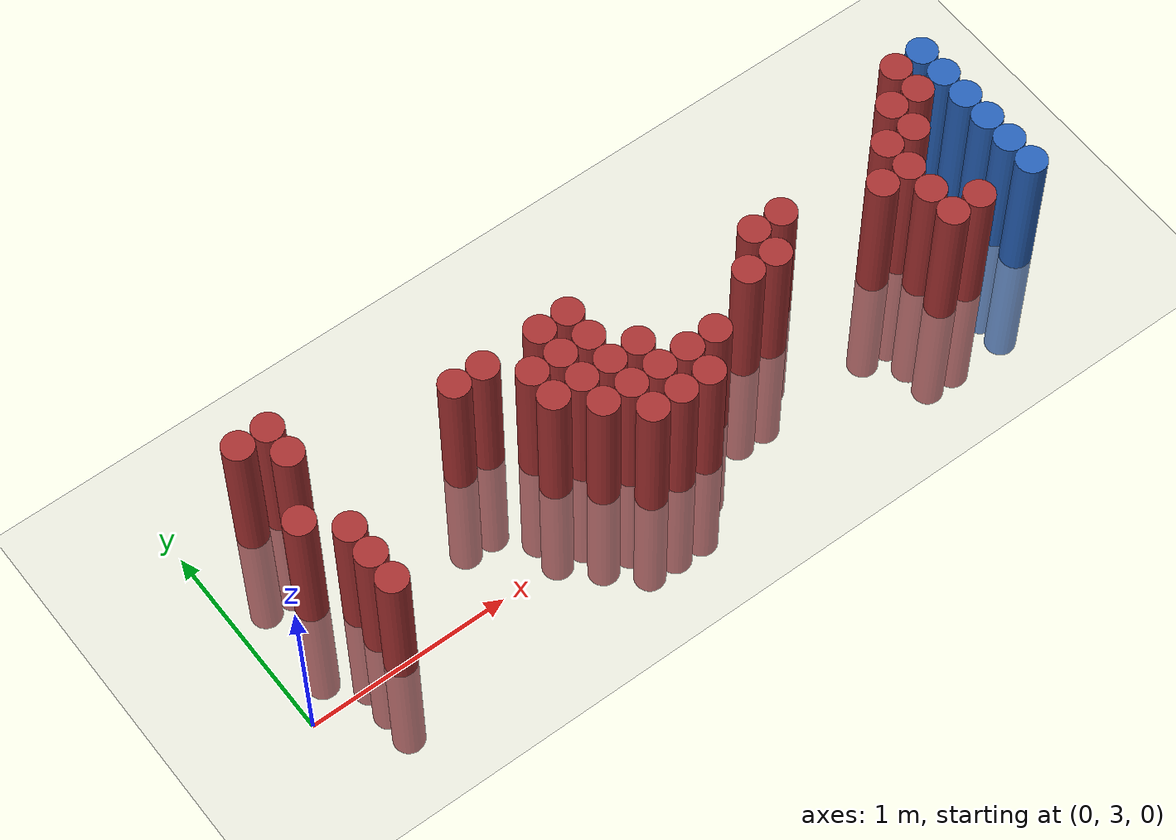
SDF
<sdf version="1.6">
 <world name="default">
  <model name="ground_plane">
   <static>1</static>
   <link name="link">
    <collision name="collision">
     <geometry><plane><normal>0 0 1</normal><size>100 100</size></plane></geometry>
     <surface><friction><ode><mu>100</mu><mu2>50</mu2></ode></friction></surface>
    </collision>
    <visual name="visual">
     <cast_shadows>0</cast_shadows>
     <geometry><plane><normal>0 0 1</normal><size>100 100</size></plane></geometry>
     <material>
      <script><uri>file://media/materials/scripts/gazebo.material</uri><name>Gazebo/Grey</name></script>
     </material>
    </visual>
   </link>
  </model>
  <model name="unit_cylinder_154">
   <static>1</static>
   <pose>3.925000 3.025000 0.000000 0.000000 0.000000 0.000000</pose>
   <link name="link">
    <inertial>
     <mass>1</mass>
     <inertia><ixx>0.145833</ixx><ixy>0</ixy><ixz>0</ixz><iyy>0.145833</iyy><iyz>0</iyz><izz>0.125</izz></inertia>
    </inertial>
    <collision name="collision">
     <geometry><cylinder><radius>0.075000</radius><length>1.5</length></cylinder></geometry>
    </collision>
    <visual name="visual">
     <geometry><cylinder><radius>0.075000</radius><length>1.5</length></cylinder></geometry>
     <material>
      <ambient>0.152000 0.379000 0.720000 1</ambient>
      <diffuse>0.152000 0.379000 0.720000 1</diffuse>
     </material>
     <material>
      <script><name>Gazebo/Grey</name><uri>file://media/materials/scripts/gazebo.material</uri></script>
     </material>
    </visual>
   </link>
  </model>
  <model name="unit_cylinder_156">
   <static>1</static>
   <pose>3.925000 3.175000 0.000000 0.000000 0.000000 0.000000</pose>
   <link name="link">
    <inertial>
     <mass>1</mass>
     <inertia><ixx>0.145833</ixx><ixy>0</ixy><ixz>0</ixz><iyy>0.145833</iyy><iyz>0</iyz><izz>0.125</izz></inertia>
    </inertial>
    <collision name="collision">
     <geometry><cylinder><radius>0.075000</radius><length>1.5</length></cylinder></geometry>
    </collision>
    <visual name="visual">
     <geometry><cylinder><radius>0.075000</radius><length>1.5</length></cylinder></geometry>
     <material>
      <ambient>0.152000 0.379000 0.720000 1</ambient>
      <diffuse>0.152000 0.379000 0.720000 1</diffuse>
     </material>
     <material>
      <script><name>Gazebo/Grey</name><uri>file://media/materials/scripts/gazebo.material</uri></script>
     </material>
    </visual>
   </link>
  </model>
  <model name="unit_cylinder_158">
   <static>1</static>
   <pose>3.925000 3.325000 0.000000 0.000000 0.000000 0.000000</pose>
   <link name="link">
    <inertial>
     <mass>1</mass>
     <inertia><ixx>0.145833</ixx><ixy>0</ixy><ixz>0</ixz><iyy>0.145833</iyy><iyz>0</iyz><izz>0.125</izz></inertia>
    </inertial>
    <collision name="collision">
     <geometry><cylinder><radius>0.075000</radius><length>1.5</length></cylinder></geometry>
    </collision>
    <visual name="visual">
     <geometry><cylinder><radius>0.075000</radius><length>1.5</length></cylinder></geometry>
     <material>
      <ambient>0.152000 0.379000 0.720000 1</ambient>
      <diffuse>0.152000 0.379000 0.720000 1</diffuse>
     </material>
     <material>
      <script><name>Gazebo/Grey</name><uri>file://media/materials/scripts/gazebo.material</uri></script>
     </material>
    </visual>
   </link>
  </model>
  <model name="unit_cylinder_160">
   <static>1</static>
   <pose>3.925000 3.475000 0.000000 0.000000 0.000000 0.000000</pose>
   <link name="link">
    <inertial>
     <mass>1</mass>
     <inertia><ixx>0.145833</ixx><ixy>0</ixy><ixz>0</ixz><iyy>0.145833</iyy><iyz>0</iyz><izz>0.125</izz></inertia>
    </inertial>
    <collision name="collision">
     <geometry><cylinder><radius>0.075000</radius><length>1.5</length></cylinder></geometry>
    </collision>
    <visual name="visual">
     <geometry><cylinder><radius>0.075000</radius><length>1.5</length></cylinder></geometry>
     <material>
      <ambient>0.152000 0.379000 0.720000 1</ambient>
      <diffuse>0.152000 0.379000 0.720000 1</diffuse>
     </material>
     <material>
      <script><name>Gazebo/Grey</name><uri>file://media/materials/scripts/gazebo.material</uri></script>
     </material>
    </visual>
   </link>
  </model>
  <model name="unit_cylinder_162">
   <static>1</static>
   <pose>3.925000 3.625000 0.000000 0.000000 0.000000 0.000000</pose>
   <link name="link">
    <inertial>
     <mass>1</mass>
     <inertia><ixx>0.145833</ixx><ixy>0</ixy><ixz>0</ixz><iyy>0.145833</iyy><iyz>0</iyz><izz>0.125</izz></inertia>
    </inertial>
    <collision name="collision">
     <geometry><cylinder><radius>0.075000</radius><length>1.5</length></cylinder></geometry>
    </collision>
    <visual name="visual">
     <geometry><cylinder><radius>0.075000</radius><length>1.5</length></cylinder></geometry>
     <material>
      <ambient>0.152000 0.379000 0.720000 1</ambient>
      <diffuse>0.152000 0.379000 0.720000 1</diffuse>
     </material>
     <material>
      <script><name>Gazebo/Grey</name><uri>file://media/materials/scripts/gazebo.material</uri></script>
     </material>
    </visual>
   </link>
  </model>
  <model name="unit_cylinder_164">
   <static>1</static>
   <pose>3.925000 3.775000 0.000000 0.000000 0.000000 0.000000</pose>
   <link name="link">
    <inertial>
     <mass>1</mass>
     <inertia><ixx>0.145833</ixx><ixy>0</ixy><ixz>0</ixz><iyy>0.145833</iyy><iyz>0</iyz><izz>0.125</izz></inertia>
    </inertial>
    <collision name="collision">
     <geometry><cylinder><radius>0.075000</radius><length>1.5</length></cylinder></geometry>
    </collision>
    <visual name="visual">
     <geometry><cylinder><radius>0.075000</radius><length>1.5</length></cylinder></geometry>
     <material>
      <ambient>0.152000 0.379000 0.720000 1</ambient>
      <diffuse>0.152000 0.379000 0.720000 1</diffuse>
     </material>
     <material>
      <script><name>Gazebo/Grey</name><uri>file://media/materials/scripts/gazebo.material</uri></script>
     </material>
    </visual>
   </link>
  </model>
  <model name="unit_cylinder_344">
   <static>1</static>
   <pose>0.325000 3.475000 0.000000 0.000000 0.000000 0.000000</pose>
   <link name="link">
    <inertial>
     <mass>1</mass>
     <inertia><ixx>0.145833</ixx><ixy>0</ixy><ixz>0</ixz><iyy>0.145833</iyy><iyz>0</iyz><izz>0.125</izz></inertia>
    </inertial>
    <collision name="collision">
     <geometry><cylinder><radius>0.075000</radius><length>1.5</length></cylinder></geometry>
    </collision>
    <visual name="visual">
     <geometry><cylinder><radius>0.075000</radius><length>1.5</length></cylinder></geometry>
     <material>
      <ambient>0.648000 0.192000 0.192000 1</ambient>
      <diffuse>0.648000 0.192000 0.192000 1</diffuse>
     </material>
     <material>
      <script><name>Gazebo/Grey</name><uri>file://media/materials/scripts/gazebo.material</uri></script>
     </material>
    </visual>
   </link>
  </model>
  <model name="unit_cylinder_345">
   <static>1</static>
   <pose>0.325000 3.925000 0.000000 0.000000 0.000000 0.000000</pose>
   <link name="link">
    <inertial>
     <mass>1</mass>
     <inertia><ixx>0.145833</ixx><ixy>0</ixy><ixz>0</ixz><iyy>0.145833</iyy><iyz>0</iyz><izz>0.125</izz></inertia>
    </inertial>
    <collision name="collision">
     <geometry><cylinder><radius>0.075000</radius><length>1.5</length></cylinder></geometry>
    </collision>
    <visual name="visual">
     <geometry><cylinder><radius>0.075000</radius><length>1.5</length></cylinder></geometry>
     <material>
      <ambient>0.648000 0.192000 0.192000 1</ambient>
      <diffuse>0.648000 0.192000 0.192000 1</diffuse>
     </material>
     <material>
      <script><name>Gazebo/Grey</name><uri>file://media/materials/scripts/gazebo.material</uri></script>
     </material>
    </visual>
   </link>
  </model>
  <model name="unit_cylinder_346">
   <static>1</static>
   <pose>0.475000 3.025000 0.000000 0.000000 0.000000 0.000000</pose>
   <link name="link">
    <inertial>
     <mass>1</mass>
     <inertia><ixx>0.145833</ixx><ixy>0</ixy><ixz>0</ixz><iyy>0.145833</iyy><iyz>0</iyz><izz>0.125</izz></inertia>
    </inertial>
    <collision name="collision">
     <geometry><cylinder><radius>0.075000</radius><length>1.5</length></cylinder></geometry>
    </collision>
    <visual name="visual">
     <geometry><cylinder><radius>0.075000</radius><length>1.5</length></cylinder></geometry>
     <material>
      <ambient>0.648000 0.192000 0.192000 1</ambient>
      <diffuse>0.648000 0.192000 0.192000 1</diffuse>
     </material>
     <material>
      <script><name>Gazebo/Grey</name><uri>file://media/materials/scripts/gazebo.material</uri></script>
     </material>
    </visual>
   </link>
  </model>
  <model name="unit_cylinder_347">
   <static>1</static>
   <pose>0.475000 3.175000 0.000000 0.000000 0.000000 0.000000</pose>
   <link name="link">
    <inertial>
     <mass>1</mass>
     <inertia><ixx>0.145833</ixx><ixy>0</ixy><ixz>0</ixz><iyy>0.145833</iyy><iyz>0</iyz><izz>0.125</izz></inertia>
    </inertial>
    <collision name="collision">
     <geometry><cylinder><radius>0.075000</radius><length>1.5</length></cylinder></geometry>
    </collision>
    <visual name="visual">
     <geometry><cylinder><radius>0.075000</radius><length>1.5</length></cylinder></geometry>
     <material>
      <ambient>0.648000 0.192000 0.192000 1</ambient>
      <diffuse>0.648000 0.192000 0.192000 1</diffuse>
     </material>
     <material>
      <script><name>Gazebo/Grey</name><uri>file://media/materials/scripts/gazebo.material</uri></script>
     </material>
    </visual>
   </link>
  </model>
  <model name="unit_cylinder_348">
   <static>1</static>
   <pose>0.475000 3.325000 0.000000 0.000000 0.000000 0.000000</pose>
   <link name="link">
    <inertial>
     <mass>1</mass>
     <inertia><ixx>0.145833</ixx><ixy>0</ixy><ixz>0</ixz><iyy>0.145833</iyy><iyz>0</iyz><izz>0.125</izz></inertia>
    </inertial>
    <collision name="collision">
     <geometry><cylinder><radius>0.075000</radius><length>1.5</length></cylinder></geometry>
    </collision>
    <visual name="visual">
     <geometry><cylinder><radius>0.075000</radius><length>1.5</length></cylinder></geometry>
     <material>
      <ambient>0.648000 0.192000 0.192000 1</ambient>
      <diffuse>0.648000 0.192000 0.192000 1</diffuse>
     </material>
     <material>
      <script><name>Gazebo/Grey</name><uri>file://media/materials/scripts/gazebo.material</uri></script>
     </material>
    </visual>
   </link>
  </model>
  <model name="unit_cylinder_349">
   <static>1</static>
   <pose>0.475000 3.775000 0.000000 0.000000 0.000000 0.000000</pose>
   <link name="link">
    <inertial>
     <mass>1</mass>
     <inertia><ixx>0.145833</ixx><ixy>0</ixy><ixz>0</ixz><iyy>0.145833</iyy><iyz>0</iyz><izz>0.125</izz></inertia>
    </inertial>
    <collision name="collision">
     <geometry><cylinder><radius>0.075000</radius><length>1.5</length></cylinder></geometry>
    </collision>
    <visual name="visual">
     <geometry><cylinder><radius>0.075000</radius><length>1.5</length></cylinder></geometry>
     <material>
      <ambient>0.648000 0.192000 0.192000 1</ambient>
      <diffuse>0.648000 0.192000 0.192000 1</diffuse>
     </material>
     <material>
      <script><name>Gazebo/Grey</name><uri>file://media/materials/scripts/gazebo.material</uri></script>
     </material>
    </visual>
   </link>
  </model>
  <model name="unit_cylinder_350">
   <static>1</static>
   <pose>0.475000 3.925000 0.000000 0.000000 0.000000 0.000000</pose>
   <link name="link">
    <inertial>
     <mass>1</mass>
     <inertia><ixx>0.145833</ixx><ixy>0</ixy><ixz>0</ixz><iyy>0.145833</iyy><iyz>0</iyz><izz>0.125</izz></inertia>
    </inertial>
    <collision name="collision">
     <geometry><cylinder><radius>0.075000</radius><length>1.5</length></cylinder></geometry>
    </collision>
    <visual name="visual">
     <geometry><cylinder><radius>0.075000</radius><length>1.5</length></cylinder></geometry>
     <material>
      <ambient>0.648000 0.192000 0.192000 1</ambient>
      <diffuse>0.648000 0.192000 0.192000 1</diffuse>
     </material>
     <material>
      <script><name>Gazebo/Grey</name><uri>file://media/materials/scripts/gazebo.material</uri></script>
     </material>
    </visual>
   </link>
  </model>
  <model name="unit_cylinder_359">
   <static>1</static>
   <pose>1.225000 3.625000 0.000000 0.000000 0.000000 0.000000</pose>
   <link name="link">
    <inertial>
     <mass>1</mass>
     <inertia><ixx>0.145833</ixx><ixy>0</ixy><ixz>0</ixz><iyy>0.145833</iyy><iyz>0</iyz><izz>0.125</izz></inertia>
    </inertial>
    <collision name="collision">
     <geometry><cylinder><radius>0.075000</radius><length>1.5</length></cylinder></geometry>
    </collision>
    <visual name="visual">
     <geometry><cylinder><radius>0.075000</radius><length>1.5</length></cylinder></geometry>
     <material>
      <ambient>0.648000 0.192000 0.192000 1</ambient>
      <diffuse>0.648000 0.192000 0.192000 1</diffuse>
     </material>
     <material>
      <script><name>Gazebo/Grey</name><uri>file://media/materials/scripts/gazebo.material</uri></script>
     </material>
    </visual>
   </link>
  </model>
  <model name="unit_cylinder_364">
   <static>1</static>
   <pose>1.375000 3.625000 0.000000 0.000000 0.000000 0.000000</pose>
   <link name="link">
    <inertial>
     <mass>1</mass>
     <inertia><ixx>0.145833</ixx><ixy>0</ixy><ixz>0</ixz><iyy>0.145833</iyy><iyz>0</iyz><izz>0.125</izz></inertia>
    </inertial>
    <collision name="collision">
     <geometry><cylinder><radius>0.075000</radius><length>1.5</length></cylinder></geometry>
    </collision>
    <visual name="visual">
     <geometry><cylinder><radius>0.075000</radius><length>1.5</length></cylinder></geometry>
     <material>
      <ambient>0.648000 0.192000 0.192000 1</ambient>
      <diffuse>0.648000 0.192000 0.192000 1</diffuse>
     </material>
     <material>
      <script><name>Gazebo/Grey</name><uri>file://media/materials/scripts/gazebo.material</uri></script>
     </material>
    </visual>
   </link>
  </model>
  <model name="unit_cylinder_368">
   <static>1</static>
   <pose>1.525000 3.325000 0.000000 0.000000 0.000000 0.000000</pose>
   <link name="link">
    <inertial>
     <mass>1</mass>
     <inertia><ixx>0.145833</ixx><ixy>0</ixy><ixz>0</ixz><iyy>0.145833</iyy><iyz>0</iyz><izz>0.125</izz></inertia>
    </inertial>
    <collision name="collision">
     <geometry><cylinder><radius>0.075000</radius><length>1.5</length></cylinder></geometry>
    </collision>
    <visual name="visual">
     <geometry><cylinder><radius>0.075000</radius><length>1.5</length></cylinder></geometry>
     <material>
      <ambient>0.648000 0.192000 0.192000 1</ambient>
      <diffuse>0.648000 0.192000 0.192000 1</diffuse>
     </material>
     <material>
      <script><name>Gazebo/Grey</name><uri>file://media/materials/scripts/gazebo.material</uri></script>
     </material>
    </visual>
   </link>
  </model>
  <model name="unit_cylinder_369">
   <static>1</static>
   <pose>1.525000 3.475000 0.000000 0.000000 0.000000 0.000000</pose>
   <link name="link">
    <inertial>
     <mass>1</mass>
     <inertia><ixx>0.145833</ixx><ixy>0</ixy><ixz>0</ixz><iyy>0.145833</iyy><iyz>0</iyz><izz>0.125</izz></inertia>
    </inertial>
    <collision name="collision">
     <geometry><cylinder><radius>0.075000</radius><length>1.5</length></cylinder></geometry>
    </collision>
    <visual name="visual">
     <geometry><cylinder><radius>0.075000</radius><length>1.5</length></cylinder></geometry>
     <material>
      <ambient>0.648000 0.192000 0.192000 1</ambient>
      <diffuse>0.648000 0.192000 0.192000 1</diffuse>
     </material>
     <material>
      <script><name>Gazebo/Grey</name><uri>file://media/materials/scripts/gazebo.material</uri></script>
     </material>
    </visual>
   </link>
  </model>
  <model name="unit_cylinder_377">
   <static>1</static>
   <pose>1.675000 3.175000 0.000000 0.000000 0.000000 0.000000</pose>
   <link name="link">
    <inertial>
     <mass>1</mass>
     <inertia><ixx>0.145833</ixx><ixy>0</ixy><ixz>0</ixz><iyy>0.145833</iyy><iyz>0</iyz><izz>0.125</izz></inertia>
    </inertial>
    <collision name="collision">
     <geometry><cylinder><radius>0.075000</radius><length>1.5</length></cylinder></geometry>
    </collision>
    <visual name="visual">
     <geometry><cylinder><radius>0.075000</radius><length>1.5</length></cylinder></geometry>
     <material>
      <ambient>0.648000 0.192000 0.192000 1</ambient>
      <diffuse>0.648000 0.192000 0.192000 1</diffuse>
     </material>
     <material>
      <script><name>Gazebo/Grey</name><uri>file://media/materials/scripts/gazebo.material</uri></script>
     </material>
    </visual>
   </link>
  </model>
  <model name="unit_cylinder_378">
   <static>1</static>
   <pose>1.675000 3.325000 0.000000 0.000000 0.000000 0.000000</pose>
   <link name="link">
    <inertial>
     <mass>1</mass>
     <inertia><ixx>0.145833</ixx><ixy>0</ixy><ixz>0</ixz><iyy>0.145833</iyy><iyz>0</iyz><izz>0.125</izz></inertia>
    </inertial>
    <collision name="collision">
     <geometry><cylinder><radius>0.075000</radius><length>1.5</length></cylinder></geometry>
    </collision>
    <visual name="visual">
     <geometry><cylinder><radius>0.075000</radius><length>1.5</length></cylinder></geometry>
     <material>
      <ambient>0.648000 0.192000 0.192000 1</ambient>
      <diffuse>0.648000 0.192000 0.192000 1</diffuse>
     </material>
     <material>
      <script><name>Gazebo/Grey</name><uri>file://media/materials/scripts/gazebo.material</uri></script>
     </material>
    </visual>
   </link>
  </model>
  <model name="unit_cylinder_379">
   <static>1</static>
   <pose>1.675000 3.475000 0.000000 0.000000 0.000000 0.000000</pose>
   <link name="link">
    <inertial>
     <mass>1</mass>
     <inertia><ixx>0.145833</ixx><ixy>0</ixy><ixz>0</ixz><iyy>0.145833</iyy><iyz>0</iyz><izz>0.125</izz></inertia>
    </inertial>
    <collision name="collision">
     <geometry><cylinder><radius>0.075000</radius><length>1.5</length></cylinder></geometry>
    </collision>
    <visual name="visual">
     <geometry><cylinder><radius>0.075000</radius><length>1.5</length></cylinder></geometry>
     <material>
      <ambient>0.648000 0.192000 0.192000 1</ambient>
      <diffuse>0.648000 0.192000 0.192000 1</diffuse>
     </material>
     <material>
      <script><name>Gazebo/Grey</name><uri>file://media/materials/scripts/gazebo.material</uri></script>
     </material>
    </visual>
   </link>
  </model>
  <model name="unit_cylinder_380">
   <static>1</static>
   <pose>1.675000 3.625000 0.000000 0.000000 0.000000 0.000000</pose>
   <link name="link">
    <inertial>
     <mass>1</mass>
     <inertia><ixx>0.145833</ixx><ixy>0</ixy><ixz>0</ixz><iyy>0.145833</iyy><iyz>0</iyz><izz>0.125</izz></inertia>
    </inertial>
    <collision name="collision">
     <geometry><cylinder><radius>0.075000</radius><length>1.5</length></cylinder></geometry>
    </collision>
    <visual name="visual">
     <geometry><cylinder><radius>0.075000</radius><length>1.5</length></cylinder></geometry>
     <material>
      <ambient>0.648000 0.192000 0.192000 1</ambient>
      <diffuse>0.648000 0.192000 0.192000 1</diffuse>
     </material>
     <material>
      <script><name>Gazebo/Grey</name><uri>file://media/materials/scripts/gazebo.material</uri></script>
     </material>
    </visual>
   </link>
  </model>
  <model name="unit_cylinder_386">
   <static>1</static>
   <pose>1.825000 3.025000 0.000000 0.000000 0.000000 0.000000</pose>
   <link name="link">
    <inertial>
     <mass>1</mass>
     <inertia><ixx>0.145833</ixx><ixy>0</ixy><ixz>0</ixz><iyy>0.145833</iyy><iyz>0</iyz><izz>0.125</izz></inertia>
    </inertial>
    <collision name="collision">
     <geometry><cylinder><radius>0.075000</radius><length>1.5</length></cylinder></geometry>
    </collision>
    <visual name="visual">
     <geometry><cylinder><radius>0.075000</radius><length>1.5</length></cylinder></geometry>
     <material>
      <ambient>0.648000 0.192000 0.192000 1</ambient>
      <diffuse>0.648000 0.192000 0.192000 1</diffuse>
     </material>
     <material>
      <script><name>Gazebo/Grey</name><uri>file://media/materials/scripts/gazebo.material</uri></script>
     </material>
    </visual>
   </link>
  </model>
  <model name="unit_cylinder_387">
   <static>1</static>
   <pose>1.825000 3.175000 0.000000 0.000000 0.000000 0.000000</pose>
   <link name="link">
    <inertial>
     <mass>1</mass>
     <inertia><ixx>0.145833</ixx><ixy>0</ixy><ixz>0</ixz><iyy>0.145833</iyy><iyz>0</iyz><izz>0.125</izz></inertia>
    </inertial>
    <collision name="collision">
     <geometry><cylinder><radius>0.075000</radius><length>1.5</length></cylinder></geometry>
    </collision>
    <visual name="visual">
     <geometry><cylinder><radius>0.075000</radius><length>1.5</length></cylinder></geometry>
     <material>
      <ambient>0.648000 0.192000 0.192000 1</ambient>
      <diffuse>0.648000 0.192000 0.192000 1</diffuse>
     </material>
     <material>
      <script><name>Gazebo/Grey</name><uri>file://media/materials/scripts/gazebo.material</uri></script>
     </material>
    </visual>
   </link>
  </model>
  <model name="unit_cylinder_388">
   <static>1</static>
   <pose>1.825000 3.325000 0.000000 0.000000 0.000000 0.000000</pose>
   <link name="link">
    <inertial>
     <mass>1</mass>
     <inertia><ixx>0.145833</ixx><ixy>0</ixy><ixz>0</ixz><iyy>0.145833</iyy><iyz>0</iyz><izz>0.125</izz></inertia>
    </inertial>
    <collision name="collision">
     <geometry><cylinder><radius>0.075000</radius><length>1.5</length></cylinder></geometry>
    </collision>
    <visual name="visual">
     <geometry><cylinder><radius>0.075000</radius><length>1.5</length></cylinder></geometry>
     <material>
      <ambient>0.648000 0.192000 0.192000 1</ambient>
      <diffuse>0.648000 0.192000 0.192000 1</diffuse>
     </material>
     <material>
      <script><name>Gazebo/Grey</name><uri>file://media/materials/scripts/gazebo.material</uri></script>
     </material>
    </visual>
   </link>
  </model>
  <model name="unit_cylinder_389">
   <static>1</static>
   <pose>1.825000 3.475000 0.000000 0.000000 0.000000 0.000000</pose>
   <link name="link">
    <inertial>
     <mass>1</mass>
     <inertia><ixx>0.145833</ixx><ixy>0</ixy><ixz>0</ixz><iyy>0.145833</iyy><iyz>0</iyz><izz>0.125</izz></inertia>
    </inertial>
    <collision name="collision">
     <geometry><cylinder><radius>0.075000</radius><length>1.5</length></cylinder></geometry>
    </collision>
    <visual name="visual">
     <geometry><cylinder><radius>0.075000</radius><length>1.5</length></cylinder></geometry>
     <material>
      <ambient>0.648000 0.192000 0.192000 1</ambient>
      <diffuse>0.648000 0.192000 0.192000 1</diffuse>
     </material>
     <material>
      <script><name>Gazebo/Grey</name><uri>file://media/materials/scripts/gazebo.material</uri></script>
     </material>
    </visual>
   </link>
  </model>
  <model name="unit_cylinder_390">
   <static>1</static>
   <pose>1.825000 3.625000 0.000000 0.000000 0.000000 0.000000</pose>
   <link name="link">
    <inertial>
     <mass>1</mass>
     <inertia><ixx>0.145833</ixx><ixy>0</ixy><ixz>0</ixz><iyy>0.145833</iyy><iyz>0</iyz><izz>0.125</izz></inertia>
    </inertial>
    <collision name="collision">
     <geometry><cylinder><radius>0.075000</radius><length>1.5</length></cylinder></geometry>
    </collision>
    <visual name="visual">
     <geometry><cylinder><radius>0.075000</radius><length>1.5</length></cylinder></geometry>
     <material>
      <ambient>0.648000 0.192000 0.192000 1</ambient>
      <diffuse>0.648000 0.192000 0.192000 1</diffuse>
     </material>
     <material>
      <script><name>Gazebo/Grey</name><uri>file://media/materials/scripts/gazebo.material</uri></script>
     </material>
    </visual>
   </link>
  </model>
  <model name="unit_cylinder_399">
   <static>1</static>
   <pose>1.975000 3.025000 0.000000 0.000000 0.000000 0.000000</pose>
   <link name="link">
    <inertial>
     <mass>1</mass>
     <inertia><ixx>0.145833</ixx><ixy>0</ixy><ixz>0</ixz><iyy>0.145833</iyy><iyz>0</iyz><izz>0.125</izz></inertia>
    </inertial>
    <collision name="collision">
     <geometry><cylinder><radius>0.075000</radius><length>1.5</length></cylinder></geometry>
    </collision>
    <visual name="visual">
     <geometry><cylinder><radius>0.075000</radius><length>1.5</length></cylinder></geometry>
     <material>
      <ambient>0.648000 0.192000 0.192000 1</ambient>
      <diffuse>0.648000 0.192000 0.192000 1</diffuse>
     </material>
     <material>
      <script><name>Gazebo/Grey</name><uri>file://media/materials/scripts/gazebo.material</uri></script>
     </material>
    </visual>
   </link>
  </model>
  <model name="unit_cylinder_400">
   <static>1</static>
   <pose>1.975000 3.175000 0.000000 0.000000 0.000000 0.000000</pose>
   <link name="link">
    <inertial>
     <mass>1</mass>
     <inertia><ixx>0.145833</ixx><ixy>0</ixy><ixz>0</ixz><iyy>0.145833</iyy><iyz>0</iyz><izz>0.125</izz></inertia>
    </inertial>
    <collision name="collision">
     <geometry><cylinder><radius>0.075000</radius><length>1.5</length></cylinder></geometry>
    </collision>
    <visual name="visual">
     <geometry><cylinder><radius>0.075000</radius><length>1.5</length></cylinder></geometry>
     <material>
      <ambient>0.648000 0.192000 0.192000 1</ambient>
      <diffuse>0.648000 0.192000 0.192000 1</diffuse>
     </material>
     <material>
      <script><name>Gazebo/Grey</name><uri>file://media/materials/scripts/gazebo.material</uri></script>
     </material>
    </visual>
   </link>
  </model>
  <model name="unit_cylinder_401">
   <static>1</static>
   <pose>1.975000 3.325000 0.000000 0.000000 0.000000 0.000000</pose>
   <link name="link">
    <inertial>
     <mass>1</mass>
     <inertia><ixx>0.145833</ixx><ixy>0</ixy><ixz>0</ixz><iyy>0.145833</iyy><iyz>0</iyz><izz>0.125</izz></inertia>
    </inertial>
    <collision name="collision">
     <geometry><cylinder><radius>0.075000</radius><length>1.5</length></cylinder></geometry>
    </collision>
    <visual name="visual">
     <geometry><cylinder><radius>0.075000</radius><length>1.5</length></cylinder></geometry>
     <material>
      <ambient>0.648000 0.192000 0.192000 1</ambient>
      <diffuse>0.648000 0.192000 0.192000 1</diffuse>
     </material>
     <material>
      <script><name>Gazebo/Grey</name><uri>file://media/materials/scripts/gazebo.material</uri></script>
     </material>
    </visual>
   </link>
  </model>
  <model name="unit_cylinder_410">
   <static>1</static>
   <pose>2.125000 3.025000 0.000000 0.000000 0.000000 0.000000</pose>
   <link name="link">
    <inertial>
     <mass>1</mass>
     <inertia><ixx>0.145833</ixx><ixy>0</ixy><ixz>0</ixz><iyy>0.145833</iyy><iyz>0</iyz><izz>0.125</izz></inertia>
    </inertial>
    <collision name="collision">
     <geometry><cylinder><radius>0.075000</radius><length>1.5</length></cylinder></geometry>
    </collision>
    <visual name="visual">
     <geometry><cylinder><radius>0.075000</radius><length>1.5</length></cylinder></geometry>
     <material>
      <ambient>0.648000 0.192000 0.192000 1</ambient>
      <diffuse>0.648000 0.192000 0.192000 1</diffuse>
     </material>
     <material>
      <script><name>Gazebo/Grey</name><uri>file://media/materials/scripts/gazebo.material</uri></script>
     </material>
    </visual>
   </link>
  </model>
  <model name="unit_cylinder_411">
   <static>1</static>
   <pose>2.125000 3.175000 0.000000 0.000000 0.000000 0.000000</pose>
   <link name="link">
    <inertial>
     <mass>1</mass>
     <inertia><ixx>0.145833</ixx><ixy>0</ixy><ixz>0</ixz><iyy>0.145833</iyy><iyz>0</iyz><izz>0.125</izz></inertia>
    </inertial>
    <collision name="collision">
     <geometry><cylinder><radius>0.075000</radius><length>1.5</length></cylinder></geometry>
    </collision>
    <visual name="visual">
     <geometry><cylinder><radius>0.075000</radius><length>1.5</length></cylinder></geometry>
     <material>
      <ambient>0.648000 0.192000 0.192000 1</ambient>
      <diffuse>0.648000 0.192000 0.192000 1</diffuse>
     </material>
     <material>
      <script><name>Gazebo/Grey</name><uri>file://media/materials/scripts/gazebo.material</uri></script>
     </material>
    </visual>
   </link>
  </model>
  <model name="unit_cylinder_418">
   <static>1</static>
   <pose>2.275000 3.175000 0.000000 0.000000 0.000000 0.000000</pose>
   <link name="link">
    <inertial>
     <mass>1</mass>
     <inertia><ixx>0.145833</ixx><ixy>0</ixy><ixz>0</ixz><iyy>0.145833</iyy><iyz>0</iyz><izz>0.125</izz></inertia>
    </inertial>
    <collision name="collision">
     <geometry><cylinder><radius>0.075000</radius><length>1.5</length></cylinder></geometry>
    </collision>
    <visual name="visual">
     <geometry><cylinder><radius>0.075000</radius><length>1.5</length></cylinder></geometry>
     <material>
      <ambient>0.648000 0.192000 0.192000 1</ambient>
      <diffuse>0.648000 0.192000 0.192000 1</diffuse>
     </material>
     <material>
      <script><name>Gazebo/Grey</name><uri>file://media/materials/scripts/gazebo.material</uri></script>
     </material>
    </visual>
   </link>
  </model>
  <model name="unit_cylinder_425">
   <static>1</static>
   <pose>2.575000 3.325000 0.000000 0.000000 0.000000 0.000000</pose>
   <link name="link">
    <inertial>
     <mass>1</mass>
     <inertia><ixx>0.145833</ixx><ixy>0</ixy><ixz>0</ixz><iyy>0.145833</iyy><iyz>0</iyz><izz>0.125</izz></inertia>
    </inertial>
    <collision name="collision">
     <geometry><cylinder><radius>0.075000</radius><length>1.5</length></cylinder></geometry>
    </collision>
    <visual name="visual">
     <geometry><cylinder><radius>0.075000</radius><length>1.5</length></cylinder></geometry>
     <material>
      <ambient>0.648000 0.192000 0.192000 1</ambient>
      <diffuse>0.648000 0.192000 0.192000 1</diffuse>
     </material>
     <material>
      <script><name>Gazebo/Grey</name><uri>file://media/materials/scripts/gazebo.material</uri></script>
     </material>
    </visual>
   </link>
  </model>
  <model name="unit_cylinder_430">
   <static>1</static>
   <pose>2.725000 3.325000 0.000000 0.000000 0.000000 0.000000</pose>
   <link name="link">
    <inertial>
     <mass>1</mass>
     <inertia><ixx>0.145833</ixx><ixy>0</ixy><ixz>0</ixz><iyy>0.145833</iyy><iyz>0</iyz><izz>0.125</izz></inertia>
    </inertial>
    <collision name="collision">
     <geometry><cylinder><radius>0.075000</radius><length>1.5</length></cylinder></geometry>
    </collision>
    <visual name="visual">
     <geometry><cylinder><radius>0.075000</radius><length>1.5</length></cylinder></geometry>
     <material>
      <ambient>0.648000 0.192000 0.192000 1</ambient>
      <diffuse>0.648000 0.192000 0.192000 1</diffuse>
     </material>
     <material>
      <script><name>Gazebo/Grey</name><uri>file://media/materials/scripts/gazebo.material</uri></script>
     </material>
    </visual>
   </link>
  </model>
  <model name="unit_cylinder_431">
   <static>1</static>
   <pose>2.725000 3.475000 0.000000 0.000000 0.000000 0.000000</pose>
   <link name="link">
    <inertial>
     <mass>1</mass>
     <inertia><ixx>0.145833</ixx><ixy>0</ixy><ixz>0</ixz><iyy>0.145833</iyy><iyz>0</iyz><izz>0.125</izz></inertia>
    </inertial>
    <collision name="collision">
     <geometry><cylinder><radius>0.075000</radius><length>1.5</length></cylinder></geometry>
    </collision>
    <visual name="visual">
     <geometry><cylinder><radius>0.075000</radius><length>1.5</length></cylinder></geometry>
     <material>
      <ambient>0.648000 0.192000 0.192000 1</ambient>
      <diffuse>0.648000 0.192000 0.192000 1</diffuse>
     </material>
     <material>
      <script><name>Gazebo/Grey</name><uri>file://media/materials/scripts/gazebo.material</uri></script>
     </material>
    </visual>
   </link>
  </model>
  <model name="unit_cylinder_436">
   <static>1</static>
   <pose>2.875000 3.475000 0.000000 0.000000 0.000000 0.000000</pose>
   <link name="link">
    <inertial>
     <mass>1</mass>
     <inertia><ixx>0.145833</ixx><ixy>0</ixy><ixz>0</ixz><iyy>0.145833</iyy><iyz>0</iyz><izz>0.125</izz></inertia>
    </inertial>
    <collision name="collision">
     <geometry><cylinder><radius>0.075000</radius><length>1.5</length></cylinder></geometry>
    </collision>
    <visual name="visual">
     <geometry><cylinder><radius>0.075000</radius><length>1.5</length></cylinder></geometry>
     <material>
      <ambient>0.648000 0.192000 0.192000 1</ambient>
      <diffuse>0.648000 0.192000 0.192000 1</diffuse>
     </material>
     <material>
      <script><name>Gazebo/Grey</name><uri>file://media/materials/scripts/gazebo.material</uri></script>
     </material>
    </visual>
   </link>
  </model>
  <model name="unit_cylinder_443">
   <static>1</static>
   <pose>3.325000 3.325000 0.000000 0.000000 0.000000 0.000000</pose>
   <link name="link">
    <inertial>
     <mass>1</mass>
     <inertia><ixx>0.145833</ixx><ixy>0</ixy><ixz>0</ixz><iyy>0.145833</iyy><iyz>0</iyz><izz>0.125</izz></inertia>
    </inertial>
    <collision name="collision">
     <geometry><cylinder><radius>0.075000</radius><length>1.5</length></cylinder></geometry>
    </collision>
    <visual name="visual">
     <geometry><cylinder><radius>0.075000</radius><length>1.5</length></cylinder></geometry>
     <material>
      <ambient>0.648000 0.192000 0.192000 1</ambient>
      <diffuse>0.648000 0.192000 0.192000 1</diffuse>
     </material>
     <material>
      <script><name>Gazebo/Grey</name><uri>file://media/materials/scripts/gazebo.material</uri></script>
     </material>
    </visual>
   </link>
  </model>
  <model name="unit_cylinder_448">
   <static>1</static>
   <pose>3.475000 3.025000 0.000000 0.000000 0.000000 0.000000</pose>
   <link name="link">
    <inertial>
     <mass>1</mass>
     <inertia><ixx>0.145833</ixx><ixy>0</ixy><ixz>0</ixz><iyy>0.145833</iyy><iyz>0</iyz><izz>0.125</izz></inertia>
    </inertial>
    <collision name="collision">
     <geometry><cylinder><radius>0.075000</radius><length>1.5</length></cylinder></geometry>
    </collision>
    <visual name="visual">
     <geometry><cylinder><radius>0.075000</radius><length>1.5</length></cylinder></geometry>
     <material>
      <ambient>0.648000 0.192000 0.192000 1</ambient>
      <diffuse>0.648000 0.192000 0.192000 1</diffuse>
     </material>
     <material>
      <script><name>Gazebo/Grey</name><uri>file://media/materials/scripts/gazebo.material</uri></script>
     </material>
    </visual>
   </link>
  </model>
  <model name="unit_cylinder_449">
   <static>1</static>
   <pose>3.475000 3.175000 0.000000 0.000000 0.000000 0.000000</pose>
   <link name="link">
    <inertial>
     <mass>1</mass>
     <inertia><ixx>0.145833</ixx><ixy>0</ixy><ixz>0</ixz><iyy>0.145833</iyy><iyz>0</iyz><izz>0.125</izz></inertia>
    </inertial>
    <collision name="collision">
     <geometry><cylinder><radius>0.075000</radius><length>1.5</length></cylinder></geometry>
    </collision>
    <visual name="visual">
     <geometry><cylinder><radius>0.075000</radius><length>1.5</length></cylinder></geometry>
     <material>
      <ambient>0.648000 0.192000 0.192000 1</ambient>
      <diffuse>0.648000 0.192000 0.192000 1</diffuse>
     </material>
     <material>
      <script><name>Gazebo/Grey</name><uri>file://media/materials/scripts/gazebo.material</uri></script>
     </material>
    </visual>
   </link>
  </model>
  <model name="unit_cylinder_450">
   <static>1</static>
   <pose>3.475000 3.325000 0.000000 0.000000 0.000000 0.000000</pose>
   <link name="link">
    <inertial>
     <mass>1</mass>
     <inertia><ixx>0.145833</ixx><ixy>0</ixy><ixz>0</ixz><iyy>0.145833</iyy><iyz>0</iyz><izz>0.125</izz></inertia>
    </inertial>
    <collision name="collision">
     <geometry><cylinder><radius>0.075000</radius><length>1.5</length></cylinder></geometry>
    </collision>
    <visual name="visual">
     <geometry><cylinder><radius>0.075000</radius><length>1.5</length></cylinder></geometry>
     <material>
      <ambient>0.648000 0.192000 0.192000 1</ambient>
      <diffuse>0.648000 0.192000 0.192000 1</diffuse>
     </material>
     <material>
      <script><name>Gazebo/Grey</name><uri>file://media/materials/scripts/gazebo.material</uri></script>
     </material>
    </visual>
   </link>
  </model>
  <model name="unit_cylinder_451">
   <static>1</static>
   <pose>3.475000 3.475000 0.000000 0.000000 0.000000 0.000000</pose>
   <link name="link">
    <inertial>
     <mass>1</mass>
     <inertia><ixx>0.145833</ixx><ixy>0</ixy><ixz>0</ixz><iyy>0.145833</iyy><iyz>0</iyz><izz>0.125</izz></inertia>
    </inertial>
    <collision name="collision">
     <geometry><cylinder><radius>0.075000</radius><length>1.5</length></cylinder></geometry>
    </collision>
    <visual name="visual">
     <geometry><cylinder><radius>0.075000</radius><length>1.5</length></cylinder></geometry>
     <material>
      <ambient>0.648000 0.192000 0.192000 1</ambient>
      <diffuse>0.648000 0.192000 0.192000 1</diffuse>
     </material>
     <material>
      <script><name>Gazebo/Grey</name><uri>file://media/materials/scripts/gazebo.material</uri></script>
     </material>
    </visual>
   </link>
  </model>
  <model name="unit_cylinder_455">
   <static>1</static>
   <pose>3.625000 3.025000 0.000000 0.000000 0.000000 0.000000</pose>
   <link name="link">
    <inertial>
     <mass>1</mass>
     <inertia><ixx>0.145833</ixx><ixy>0</ixy><ixz>0</ixz><iyy>0.145833</iyy><iyz>0</iyz><izz>0.125</izz></inertia>
    </inertial>
    <collision name="collision">
     <geometry><cylinder><radius>0.075000</radius><length>1.5</length></cylinder></geometry>
    </collision>
    <visual name="visual">
     <geometry><cylinder><radius>0.075000</radius><length>1.5</length></cylinder></geometry>
     <material>
      <ambient>0.648000 0.192000 0.192000 1</ambient>
      <diffuse>0.648000 0.192000 0.192000 1</diffuse>
     </material>
     <material>
      <script><name>Gazebo/Grey</name><uri>file://media/materials/scripts/gazebo.material</uri></script>
     </material>
    </visual>
   </link>
  </model>
  <model name="unit_cylinder_456">
   <static>1</static>
   <pose>3.625000 3.475000 0.000000 0.000000 0.000000 0.000000</pose>
   <link name="link">
    <inertial>
     <mass>1</mass>
     <inertia><ixx>0.145833</ixx><ixy>0</ixy><ixz>0</ixz><iyy>0.145833</iyy><iyz>0</iyz><izz>0.125</izz></inertia>
    </inertial>
    <collision name="collision">
     <geometry><cylinder><radius>0.075000</radius><length>1.5</length></cylinder></geometry>
    </collision>
    <visual name="visual">
     <geometry><cylinder><radius>0.075000</radius><length>1.5</length></cylinder></geometry>
     <material>
      <ambient>0.648000 0.192000 0.192000 1</ambient>
      <diffuse>0.648000 0.192000 0.192000 1</diffuse>
     </material>
     <material>
      <script><name>Gazebo/Grey</name><uri>file://media/materials/scripts/gazebo.material</uri></script>
     </material>
    </visual>
   </link>
  </model>
  <model name="unit_cylinder_457">
   <static>1</static>
   <pose>3.625000 3.625000 0.000000 0.000000 0.000000 0.000000</pose>
   <link name="link">
    <inertial>
     <mass>1</mass>
     <inertia><ixx>0.145833</ixx><ixy>0</ixy><ixz>0</ixz><iyy>0.145833</iyy><iyz>0</iyz><izz>0.125</izz></inertia>
    </inertial>
    <collision name="collision">
     <geometry><cylinder><radius>0.075000</radius><length>1.5</length></cylinder></geometry>
    </collision>
    <visual name="visual">
     <geometry><cylinder><radius>0.075000</radius><length>1.5</length></cylinder></geometry>
     <material>
      <ambient>0.648000 0.192000 0.192000 1</ambient>
      <diffuse>0.648000 0.192000 0.192000 1</diffuse>
     </material>
     <material>
      <script><name>Gazebo/Grey</name><uri>file://media/materials/scripts/gazebo.material</uri></script>
     </material>
    </visual>
   </link>
  </model>
  <model name="unit_cylinder_467">
   <static>1</static>
   <pose>3.775000 3.625000 0.000000 0.000000 0.000000 0.000000</pose>
   <link name="link">
    <inertial>
     <mass>1</mass>
     <inertia><ixx>0.145833</ixx><ixy>0</ixy><ixz>0</ixz><iyy>0.145833</iyy><iyz>0</iyz><izz>0.125</izz></inertia>
    </inertial>
    <collision name="collision">
     <geometry><cylinder><radius>0.075000</radius><length>1.5</length></cylinder></geometry>
    </collision>
    <visual name="visual">
     <geometry><cylinder><radius>0.075000</radius><length>1.5</length></cylinder></geometry>
     <material>
      <ambient>0.648000 0.192000 0.192000 1</ambient>
      <diffuse>0.648000 0.192000 0.192000 1</diffuse>
     </material>
     <material>
      <script><name>Gazebo/Grey</name><uri>file://media/materials/scripts/gazebo.material</uri></script>
     </material>
    </visual>
   </link>
  </model>
  <model name="unit_cylinder_468">
   <static>1</static>
   <pose>3.775000 3.775000 0.000000 0.000000 0.000000 0.000000</pose>
   <link name="link">
    <inertial>
     <mass>1</mass>
     <inertia><ixx>0.145833</ixx><ixy>0</ixy><ixz>0</ixz><iyy>0.145833</iyy><iyz>0</iyz><izz>0.125</izz></inertia>
    </inertial>
    <collision name="collision">
     <geometry><cylinder><radius>0.075000</radius><length>1.5</length></cylinder></geometry>
    </collision>
    <visual name="visual">
     <geometry><cylinder><radius>0.075000</radius><length>1.5</length></cylinder></geometry>
     <material>
      <ambient>0.648000 0.192000 0.192000 1</ambient>
      <diffuse>0.648000 0.192000 0.192000 1</diffuse>
     </material>
     <material>
      <script><name>Gazebo/Grey</name><uri>file://media/materials/scripts/gazebo.material</uri></script>
     </material>
    </visual>
   </link>
  </model>
  <model name="unit_cylinder_503">
   <static>1</static>
   <pose>3.925000 3.025000 0.000000 0.000000 0.000000 0.000000</pose>
   <link name="link">
    <inertial>
     <mass>1</mass>
     <inertia><ixx>0.145833</ixx><ixy>0</ixy><ixz>0</ixz><iyy>0.145833</iyy><iyz>0</iyz><izz>0.125</izz></inertia>
    </inertial>
    <collision name="collision">
     <geometry><cylinder><radius>0.075000</radius><length>1.5</length></cylinder></geometry>
    </collision>
    <visual name="visual">
     <geometry><cylinder><radius>0.075000</radius><length>1.5</length></cylinder></geometry>
     <material>
      <ambient>0.152000 0.379000 0.720000 1</ambient>
      <diffuse>0.152000 0.379000 0.720000 1</diffuse>
     </material>
     <material>
      <script><name>Gazebo/Grey</name><uri>file://media/materials/scripts/gazebo.material</uri></script>
     </material>
    </visual>
   </link>
  </model>
  <model name="unit_cylinder_504">
   <static>1</static>
   <pose>3.925000 3.175000 0.000000 0.000000 0.000000 0.000000</pose>
   <link name="link">
    <inertial>
     <mass>1</mass>
     <inertia><ixx>0.145833</ixx><ixy>0</ixy><ixz>0</ixz><iyy>0.145833</iyy><iyz>0</iyz><izz>0.125</izz></inertia>
    </inertial>
    <collision name="collision">
     <geometry><cylinder><radius>0.075000</radius><length>1.5</length></cylinder></geometry>
    </collision>
    <visual name="visual">
     <geometry><cylinder><radius>0.075000</radius><length>1.5</length></cylinder></geometry>
     <material>
      <ambient>0.152000 0.379000 0.720000 1</ambient>
      <diffuse>0.152000 0.379000 0.720000 1</diffuse>
     </material>
     <material>
      <script><name>Gazebo/Grey</name><uri>file://media/materials/scripts/gazebo.material</uri></script>
     </material>
    </visual>
   </link>
  </model>
  <model name="unit_cylinder_505">
   <static>1</static>
   <pose>3.925000 3.325000 0.000000 0.000000 0.000000 0.000000</pose>
   <link name="link">
    <inertial>
     <mass>1</mass>
     <inertia><ixx>0.145833</ixx><ixy>0</ixy><ixz>0</ixz><iyy>0.145833</iyy><iyz>0</iyz><izz>0.125</izz></inertia>
    </inertial>
    <collision name="collision">
     <geometry><cylinder><radius>0.075000</radius><length>1.5</length></cylinder></geometry>
    </collision>
    <visual name="visual">
     <geometry><cylinder><radius>0.075000</radius><length>1.5</length></cylinder></geometry>
     <material>
      <ambient>0.152000 0.379000 0.720000 1</ambient>
      <diffuse>0.152000 0.379000 0.720000 1</diffuse>
     </material>
     <material>
      <script><name>Gazebo/Grey</name><uri>file://media/materials/scripts/gazebo.material</uri></script>
     </material>
    </visual>
   </link>
  </model>
  <model name="unit_cylinder_506">
   <static>1</static>
   <pose>3.925000 3.475000 0.000000 0.000000 0.000000 0.000000</pose>
   <link name="link">
    <inertial>
     <mass>1</mass>
     <inertia><ixx>0.145833</ixx><ixy>0</ixy><ixz>0</ixz><iyy>0.145833</iyy><iyz>0</iyz><izz>0.125</izz></inertia>
    </inertial>
    <collision name="collision">
     <geometry><cylinder><radius>0.075000</radius><length>1.5</length></cylinder></geometry>
    </collision>
    <visual name="visual">
     <geometry><cylinder><radius>0.075000</radius><length>1.5</length></cylinder></geometry>
     <material>
      <ambient>0.152000 0.379000 0.720000 1</ambient>
      <diffuse>0.152000 0.379000 0.720000 1</diffuse>
     </material>
     <material>
      <script><name>Gazebo/Grey</name><uri>file://media/materials/scripts/gazebo.material</uri></script>
     </material>
    </visual>
   </link>
  </model>
  <model name="unit_cylinder_507">
   <static>1</static>
   <pose>3.925000 3.625000 0.000000 0.000000 0.000000 0.000000</pose>
   <link name="link">
    <inertial>
     <mass>1</mass>
     <inertia><ixx>0.145833</ixx><ixy>0</ixy><ixz>0</ixz><iyy>0.145833</iyy><iyz>0</iyz><izz>0.125</izz></inertia>
    </inertial>
    <collision name="collision">
     <geometry><cylinder><radius>0.075000</radius><length>1.5</length></cylinder></geometry>
    </collision>
    <visual name="visual">
     <geometry><cylinder><radius>0.075000</radius><length>1.5</length></cylinder></geometry>
     <material>
      <ambient>0.152000 0.379000 0.720000 1</ambient>
      <diffuse>0.152000 0.379000 0.720000 1</diffuse>
     </material>
     <material>
      <script><name>Gazebo/Grey</name><uri>file://media/materials/scripts/gazebo.material</uri></script>
     </material>
    </visual>
   </link>
  </model>
  <model name="unit_cylinder_508">
   <static>1</static>
   <pose>3.925000 3.775000 0.000000 0.000000 0.000000 0.000000</pose>
   <link name="link">
    <inertial>
     <mass>1</mass>
     <inertia><ixx>0.145833</ixx><ixy>0</ixy><ixz>0</ixz><iyy>0.145833</iyy><iyz>0</iyz><izz>0.125</izz></inertia>
    </inertial>
    <collision name="collision">
     <geometry><cylinder><radius>0.075000</radius><length>1.5</length></cylinder></geometry>
    </collision>
    <visual name="visual">
     <geometry><cylinder><radius>0.075000</radius><length>1.5</length></cylinder></geometry>
     <material>
      <ambient>0.152000 0.379000 0.720000 1</ambient>
      <diffuse>0.152000 0.379000 0.720000 1</diffuse>
     </material>
     <material>
      <script><name>Gazebo/Grey</name><uri>file://media/materials/scripts/gazebo.material</uri></script>
     </material>
    </visual>
   </link>
  </model>
 </world>
</sdf>
